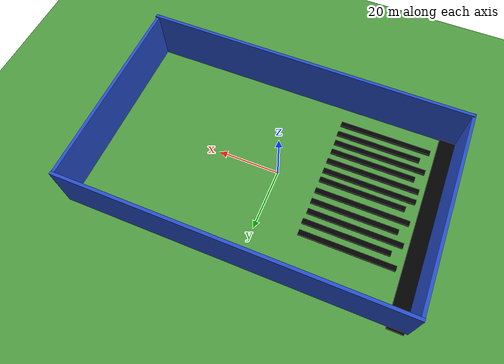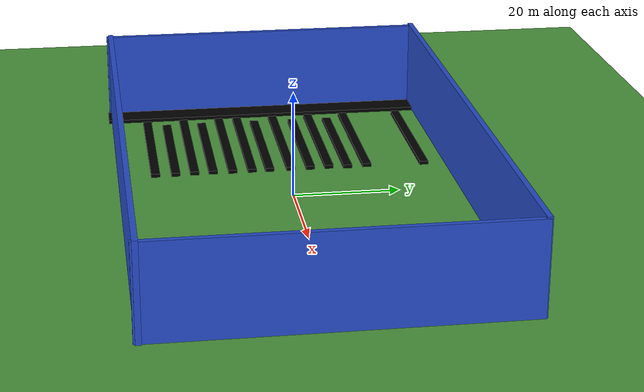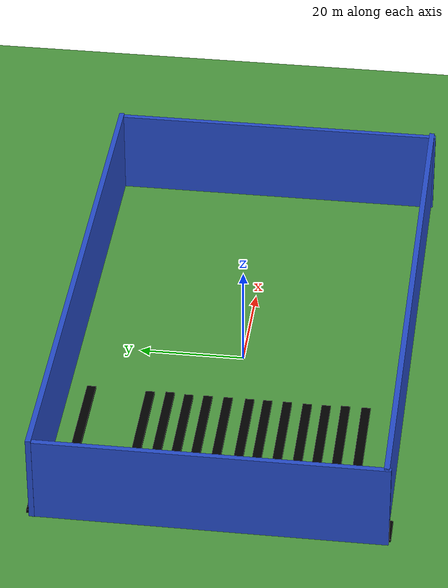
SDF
<sdf version="1.6">
 <world name="default">
  <model name="ground_plane">
   <static>1</static>
   <link name="link">
    <collision name="collision">
     <geometry><plane><normal>0 0 1</normal><size>120 120</size></plane></geometry>
     <surface><friction><ode><mu>100</mu><mu2>50</mu2></ode></friction></surface>
    </collision>
    <visual name="visual">
     <cast_shadows>0</cast_shadows>
     <geometry><plane><normal>0 0 1</normal><size>120 120</size></plane></geometry>
     <material>
      <script><uri>file://media/materials/scripts/gazebo.material</uri><name>Gazebo/Grass</name></script>
     </material>
    </visual>
   </link>
  </model>
  <model name="WALLS">
   <link name="link_0">
    <pose>-4.49328 -45.6418 8.05225 0 -0 0</pose>
    <inertial>
     <mass>1098.77</mass>
     <inertia><ixx>408732</ixx><ixy>0</ixy><ixz>0</ixz><iyy>26571.1</iyy><iyz>0</iyz><izz>382344</izz></inertia>
    </inertial>
    <visual name="visual">
     <geometry><box><size>1 64.6118 17.0056</size></box></geometry>
     <material>
      <script><uri>file://media/materials/scripts/gazebo.material</uri><name>Gazebo/BlueLaser</name></script>
     </material>
    </visual>
    <collision name="collision">
     <geometry><box><size>1 64.6118 17.0056</size></box></geometry>
     <surface>
      <friction>
       <ode><mu>1</mu><mu2>1</mu2><fdir1>0 0 0</fdir1><slip1>0</slip1><slip2>0</slip2></ode>
       <torsional>
        <coefficient>1</coefficient>
        <patch_radius>0</patch_radius>
        <surface_radius>0</surface_radius>
        <use_patch_radius>1</use_patch_radius>
        <ode><slip>0</slip></ode>
       </torsional>
      </friction>
      <bounce><restitution_coefficient>0</restitution_coefficient><threshold>1e+06</threshold></bounce>
      <contact>
       <collide_without_contact>0</collide_without_contact>
       <collide_without_contact_bitmask>1</collide_without_contact_bitmask>
       <collide_bitmask>1</collide_bitmask>
       <ode>
        <soft_cfm>0</soft_cfm>
        <soft_erp>0.2</soft_erp>
        <kp>1e+13</kp>
        <kd>1</kd>
        <max_vel>0.01</max_vel>
        <min_depth>0</min_depth>
       </ode>
       <bullet>
        <split_impulse>1</split_impulse>
        <split_impulse_penetration_threshold>-0.01</split_impulse_penetration_threshold>
        <soft_cfm>0</soft_cfm>
        <soft_erp>0.2</soft_erp>
        <kp>1e+13</kp>
        <kd>1</kd>
       </bullet>
      </contact>
     </surface>
    </collision>
   </link>
   <link name="link_0_clone">
    <pose>101.382 -45.6581 8.05225 0 -0 0</pose>
    <inertial>
     <mass>1098.77</mass>
     <inertia><ixx>408732</ixx><ixy>0</ixy><ixz>0</ixz><iyy>26571.1</iyy><iyz>0</iyz><izz>382344</izz></inertia>
    </inertial>
    <visual name="visual">
     <geometry><box><size>1 64.6118 17.0056</size></box></geometry>
     <material>
      <script><uri>file://media/materials/scripts/gazebo.material</uri><name>Gazebo/BlueLaser</name></script>
     </material>
    </visual>
    <collision name="collision">
     <geometry><box><size>1 64.6118 17.0056</size></box></geometry>
     <surface>
      <friction>
       <ode><mu>1</mu><mu2>1</mu2><fdir1>0 0 0</fdir1><slip1>0</slip1><slip2>0</slip2></ode>
       <torsional>
        <coefficient>1</coefficient>
        <patch_radius>0</patch_radius>
        <surface_radius>0</surface_radius>
        <use_patch_radius>1</use_patch_radius>
        <ode><slip>0</slip></ode>
       </torsional>
      </friction>
      <bounce><restitution_coefficient>0</restitution_coefficient><threshold>1e+06</threshold></bounce>
      <contact>
       <collide_without_contact>0</collide_without_contact>
       <collide_without_contact_bitmask>1</collide_without_contact_bitmask>
       <collide_bitmask>1</collide_bitmask>
       <ode>
        <soft_cfm>0</soft_cfm>
        <soft_erp>0.2</soft_erp>
        <kp>1e+13</kp>
        <kd>1</kd>
        <max_vel>0.01</max_vel>
        <min_depth>0</min_depth>
       </ode>
       <bullet>
        <split_impulse>1</split_impulse>
        <split_impulse_penetration_threshold>-0.01</split_impulse_penetration_threshold>
        <soft_cfm>0</soft_cfm>
        <soft_erp>0.2</soft_erp>
        <kp>1e+13</kp>
        <kd>1</kd>
       </bullet>
      </contact>
     </surface>
    </collision>
   </link>
   <link name="link_clone">
    <pose>48.7455 -77.1551 8.20614 0 -0 0</pose>
    <inertial>
     <mass>1851.31</mass>
     <inertia>
      <ixx>46490.6</ixx>
      <ixy>0</ixy>
      <ixz>0</ixz>
      <iyy>1.80683e+06</iyy>
      <iyz>0</iyz>
      <izz>1.76065e+06</izz>
     </inertia>
    </inertial>
    <visual name="visual">
     <geometry><box><size>106.824 1 17.3306</size></box></geometry>
     <material>
      <script><uri>file://media/materials/scripts/gazebo.material</uri><name>Gazebo/BlueLaser</name></script>
     </material>
    </visual>
    <collision name="collision">
     <geometry><box><size>106.824 1 17.3306</size></box></geometry>
     <surface>
      <friction>
       <ode><mu>1</mu><mu2>1</mu2><fdir1>0 0 0</fdir1><slip1>0</slip1><slip2>0</slip2></ode>
       <torsional>
        <coefficient>1</coefficient>
        <patch_radius>0</patch_radius>
        <surface_radius>0</surface_radius>
        <use_patch_radius>1</use_patch_radius>
        <ode><slip>0</slip></ode>
       </torsional>
      </friction>
      <bounce><restitution_coefficient>0</restitution_coefficient><threshold>1e+06</threshold></bounce>
      <contact>
       <collide_without_contact>0</collide_without_contact>
       <collide_without_contact_bitmask>1</collide_without_contact_bitmask>
       <collide_bitmask>1</collide_bitmask>
       <ode>
        <soft_cfm>0</soft_cfm>
        <soft_erp>0.2</soft_erp>
        <kp>1e+13</kp>
        <kd>1</kd>
        <max_vel>0.01</max_vel>
        <min_depth>0</min_depth>
       </ode>
       <bullet>
        <split_impulse>1</split_impulse>
        <split_impulse_penetration_threshold>-0.01</split_impulse_penetration_threshold>
        <soft_cfm>0</soft_cfm>
        <soft_erp>0.2</soft_erp>
        <kp>1e+13</kp>
        <kd>1</kd>
       </bullet>
      </contact>
     </surface>
    </collision>
   </link>
   <link name="link_clone_clone">
    <pose>48.3822 -13.6581 8.20614 0 -0 0</pose>
    <inertial>
     <mass>1851.31</mass>
     <inertia>
      <ixx>46490.6</ixx>
      <ixy>0</ixy>
      <ixz>0</ixz>
      <iyy>1.80683e+06</iyy>
      <iyz>0</iyz>
      <izz>1.76065e+06</izz>
     </inertia>
    </inertial>
    <visual name="visual">
     <geometry><box><size>106.824 1 17.3306</size></box></geometry>
     <material>
      <script><uri>file://media/materials/scripts/gazebo.material</uri><name>Gazebo/BlueLaser</name></script>
     </material>
    </visual>
    <collision name="collision">
     <geometry><box><size>106.824 1 17.3306</size></box></geometry>
     <surface>
      <friction>
       <ode><mu>1</mu><mu2>1</mu2><fdir1>0 0 0</fdir1><slip1>0</slip1><slip2>0</slip2></ode>
       <torsional>
        <coefficient>1</coefficient>
        <patch_radius>0</patch_radius>
        <surface_radius>0</surface_radius>
        <use_patch_radius>1</use_patch_radius>
        <ode><slip>0</slip></ode>
       </torsional>
      </friction>
      <bounce><restitution_coefficient>0</restitution_coefficient><threshold>1e+06</threshold></bounce>
      <contact>
       <collide_without_contact>0</collide_without_contact>
       <collide_without_contact_bitmask>1</collide_without_contact_bitmask>
       <collide_bitmask>1</collide_bitmask>
       <ode>
        <soft_cfm>0</soft_cfm>
        <soft_erp>0.2</soft_erp>
        <kp>1e+13</kp>
        <kd>1</kd>
        <max_vel>0.01</max_vel>
        <min_depth>0</min_depth>
       </ode>
       <bullet>
        <split_impulse>1</split_impulse>
        <split_impulse_penetration_threshold>-0.01</split_impulse_penetration_threshold>
        <soft_cfm>0</soft_cfm>
        <soft_erp>0.2</soft_erp>
        <kp>1e+13</kp>
        <kd>1</kd>
       </bullet>
      </contact>
     </surface>
    </collision>
   </link>
   <static>1</static>
   <pose>-45.7442 45.6641 0.450532 0 -0 0.000945</pose>
  </model>
  <model name="crop_01_8_clone_0_clone_0_clone_1_clone_clone_clone_clone_0_clone_27">
   <link name="crop_01_0::link_0">
    <inertial>
     <mass>10.9148</mass>
     <inertia><ixx>13.7036</ixx><ixy>0</ixy><ixz>0</ixz><iyy>702.087</iyy><iyz>0</iyz><izz>715.772</izz></inertia>
    </inertial>
    <visual name="visual">
     <geometry><box><size>30 1.68705 1</size></box></geometry>
     <material>
      <ambient>0 1 0 1</ambient>
      <diffuse>0 0 0 1</diffuse>
      <specular>0.1 0.1 0.1 1</specular>
      <emissive>0 0 0 0</emissive>
     </material>
    </visual>
    <collision name="collision">
     <geometry><box><size>30 1.68705 1</size></box></geometry>
     <surface>
      <friction>
       <ode><mu>1</mu><mu2>1</mu2><fdir1>0 0 0</fdir1><slip1>0</slip1><slip2>0</slip2></ode>
       <torsional>
        <coefficient>1</coefficient>
        <patch_radius>0</patch_radius>
        <surface_radius>0</surface_radius>
        <use_patch_radius>1</use_patch_radius>
        <ode><slip>0</slip></ode>
       </torsional>
      </friction>
      <bounce><restitution_coefficient>0</restitution_coefficient><threshold>1e+06</threshold></bounce>
      <contact>
       <collide_without_contact>0</collide_without_contact>
       <collide_without_contact_bitmask>1</collide_without_contact_bitmask>
       <collide_bitmask>1</collide_bitmask>
       <ode>
        <soft_cfm>0</soft_cfm>
        <soft_erp>0.2</soft_erp>
        <kp>1e+13</kp>
        <kd>1</kd>
        <max_vel>0.01</max_vel>
        <min_depth>0</min_depth>
       </ode>
       <bullet>
        <split_impulse>1</split_impulse>
        <split_impulse_penetration_threshold>-0.01</split_impulse_penetration_threshold>
        <soft_cfm>0</soft_cfm>
        <soft_erp>0.2</soft_erp>
        <kp>1e+13</kp>
        <kd>1</kd>
       </bullet>
      </contact>
     </surface>
    </collision>
   </link>
   <static>1</static>
   <pose>-27.8528 -24.7988 0.050638 0 -0 0</pose>
  </model>
  <model name="crop_01_8_clone_0_clone_0_clone_1_clone_clone_clone_clone_0_clone_30">
   <link name="crop_01_0::link_0">
    <inertial>
     <mass>10.9148</mass>
     <inertia><ixx>13.7036</ixx><ixy>0</ixy><ixz>0</ixz><iyy>702.087</iyy><iyz>0</iyz><izz>715.772</izz></inertia>
    </inertial>
    <visual name="visual">
     <geometry><box><size>30 1.68705 1</size></box></geometry>
     <material>
      <ambient>0 1 0 1</ambient>
      <diffuse>0 0 0 1</diffuse>
      <specular>0.1 0.1 0.1 1</specular>
      <emissive>0 0 0 0</emissive>
     </material>
    </visual>
    <collision name="collision">
     <geometry><box><size>30 1.68705 1</size></box></geometry>
     <surface>
      <friction>
       <ode><mu>1</mu><mu2>1</mu2><fdir1>0 0 0</fdir1><slip1>0</slip1><slip2>0</slip2></ode>
       <torsional>
        <coefficient>1</coefficient>
        <patch_radius>0</patch_radius>
        <surface_radius>0</surface_radius>
        <use_patch_radius>1</use_patch_radius>
        <ode><slip>0</slip></ode>
       </torsional>
      </friction>
      <bounce><restitution_coefficient>0</restitution_coefficient><threshold>1e+06</threshold></bounce>
      <contact>
       <collide_without_contact>0</collide_without_contact>
       <collide_without_contact_bitmask>1</collide_without_contact_bitmask>
       <collide_bitmask>1</collide_bitmask>
       <ode>
        <soft_cfm>0</soft_cfm>
        <soft_erp>0.2</soft_erp>
        <kp>1e+13</kp>
        <kd>1</kd>
        <max_vel>0.01</max_vel>
        <min_depth>0</min_depth>
       </ode>
       <bullet>
        <split_impulse>1</split_impulse>
        <split_impulse_penetration_threshold>-0.01</split_impulse_penetration_threshold>
        <soft_cfm>0</soft_cfm>
        <soft_erp>0.2</soft_erp>
        <kp>1e+13</kp>
        <kd>1</kd>
       </bullet>
      </contact>
     </surface>
    </collision>
   </link>
   <static>1</static>
   <pose>-28.0604 -17.3004 0.050638 0 -0 0</pose>
  </model>
  <model name="crop_01_8_clone_0_clone_0_clone_1_clone_clone_clone_clone_0_clone_33">
   <link name="crop_01_0::link_0">
    <inertial>
     <mass>10.9148</mass>
     <inertia><ixx>13.7036</ixx><ixy>0</ixy><ixz>0</ixz><iyy>702.087</iyy><iyz>0</iyz><izz>715.772</izz></inertia>
    </inertial>
    <visual name="visual">
     <geometry><box><size>30 1.68705 1</size></box></geometry>
     <material>
      <ambient>0 1 0 1</ambient>
      <diffuse>0 0 0 1</diffuse>
      <specular>0.1 0.1 0.1 1</specular>
      <emissive>0 0 0 0</emissive>
     </material>
    </visual>
    <collision name="collision">
     <geometry><box><size>30 1.68705 1</size></box></geometry>
     <surface>
      <friction>
       <ode><mu>1</mu><mu2>1</mu2><fdir1>0 0 0</fdir1><slip1>0</slip1><slip2>0</slip2></ode>
       <torsional>
        <coefficient>1</coefficient>
        <patch_radius>0</patch_radius>
        <surface_radius>0</surface_radius>
        <use_patch_radius>1</use_patch_radius>
        <ode><slip>0</slip></ode>
       </torsional>
      </friction>
      <bounce><restitution_coefficient>0</restitution_coefficient><threshold>1e+06</threshold></bounce>
      <contact>
       <collide_without_contact>0</collide_without_contact>
       <collide_without_contact_bitmask>1</collide_without_contact_bitmask>
       <collide_bitmask>1</collide_bitmask>
       <ode>
        <soft_cfm>0</soft_cfm>
        <soft_erp>0.2</soft_erp>
        <kp>1e+13</kp>
        <kd>1</kd>
        <max_vel>0.01</max_vel>
        <min_depth>0</min_depth>
       </ode>
       <bullet>
        <split_impulse>1</split_impulse>
        <split_impulse_penetration_threshold>-0.01</split_impulse_penetration_threshold>
        <soft_cfm>0</soft_cfm>
        <soft_erp>0.2</soft_erp>
        <kp>1e+13</kp>
        <kd>1</kd>
       </bullet>
      </contact>
     </surface>
    </collision>
   </link>
   <static>1</static>
   <pose>-27.9791 -6.20116 0.050638 0 -0 0</pose>
  </model>
  <model name="crop_01_8_clone_0_clone_0_clone_1_clone_clone_clone_clone_0_clone_35">
   <link name="crop_01_0::link_0">
    <inertial>
     <mass>10.9148</mass>
     <inertia><ixx>13.7036</ixx><ixy>0</ixy><ixz>0</ixz><iyy>702.087</iyy><iyz>0</iyz><izz>715.772</izz></inertia>
    </inertial>
    <visual name="visual">
     <geometry><box><size>30 1.68705 1</size></box></geometry>
     <material>
      <ambient>0 1 0 1</ambient>
      <diffuse>0 0 0 1</diffuse>
      <specular>0.1 0.1 0.1 1</specular>
      <emissive>0 0 0 0</emissive>
     </material>
    </visual>
    <collision name="collision">
     <geometry><box><size>30 1.68705 1</size></box></geometry>
     <surface>
      <friction>
       <ode><mu>1</mu><mu2>1</mu2><fdir1>0 0 0</fdir1><slip1>0</slip1><slip2>0</slip2></ode>
       <torsional>
        <coefficient>1</coefficient>
        <patch_radius>0</patch_radius>
        <surface_radius>0</surface_radius>
        <use_patch_radius>1</use_patch_radius>
        <ode><slip>0</slip></ode>
       </torsional>
      </friction>
      <bounce><restitution_coefficient>0</restitution_coefficient><threshold>1e+06</threshold></bounce>
      <contact>
       <collide_without_contact>0</collide_without_contact>
       <collide_without_contact_bitmask>1</collide_without_contact_bitmask>
       <collide_bitmask>1</collide_bitmask>
       <ode>
        <soft_cfm>0</soft_cfm>
        <soft_erp>0.2</soft_erp>
        <kp>1e+13</kp>
        <kd>1</kd>
        <max_vel>0.01</max_vel>
        <min_depth>0</min_depth>
       </ode>
       <bullet>
        <split_impulse>1</split_impulse>
        <split_impulse_penetration_threshold>-0.01</split_impulse_penetration_threshold>
        <soft_cfm>0</soft_cfm>
        <soft_erp>0.2</soft_erp>
        <kp>1e+13</kp>
        <kd>1</kd>
       </bullet>
      </contact>
     </surface>
    </collision>
   </link>
   <static>1</static>
   <pose>-27.9705 1.30195 0.050638 0 -0 0</pose>
  </model>
  <model name="crop_01_8_clone_0_clone_0_clone_1_clone_clone_clone_clone_0_clone_38">
   <link name="crop_01_0::link_0">
    <inertial>
     <mass>10.9148</mass>
     <inertia><ixx>13.7036</ixx><ixy>0</ixy><ixz>0</ixz><iyy>702.087</iyy><iyz>0</iyz><izz>715.772</izz></inertia>
    </inertial>
    <visual name="visual">
     <geometry><box><size>30 1.68705 1</size></box></geometry>
     <material>
      <ambient>0 1 0 1</ambient>
      <diffuse>0 0 0 1</diffuse>
      <specular>0.1 0.1 0.1 1</specular>
      <emissive>0 0 0 0</emissive>
     </material>
    </visual>
    <collision name="collision">
     <geometry><box><size>30 1.68705 1</size></box></geometry>
     <surface>
      <friction>
       <ode><mu>1</mu><mu2>1</mu2><fdir1>0 0 0</fdir1><slip1>0</slip1><slip2>0</slip2></ode>
       <torsional>
        <coefficient>1</coefficient>
        <patch_radius>0</patch_radius>
        <surface_radius>0</surface_radius>
        <use_patch_radius>1</use_patch_radius>
        <ode><slip>0</slip></ode>
       </torsional>
      </friction>
      <bounce><restitution_coefficient>0</restitution_coefficient><threshold>1e+06</threshold></bounce>
      <contact>
       <collide_without_contact>0</collide_without_contact>
       <collide_without_contact_bitmask>1</collide_without_contact_bitmask>
       <collide_bitmask>1</collide_bitmask>
       <ode>
        <soft_cfm>0</soft_cfm>
        <soft_erp>0.2</soft_erp>
        <kp>1e+13</kp>
        <kd>1</kd>
        <max_vel>0.01</max_vel>
        <min_depth>0</min_depth>
       </ode>
       <bullet>
        <split_impulse>1</split_impulse>
        <split_impulse_penetration_threshold>-0.01</split_impulse_penetration_threshold>
        <soft_cfm>0</soft_cfm>
        <soft_erp>0.2</soft_erp>
        <kp>1e+13</kp>
        <kd>1</kd>
       </bullet>
      </contact>
     </surface>
    </collision>
   </link>
   <static>1</static>
   <pose>-28.0581 8.76583 0.050638 0 -0 0</pose>
  </model>
  <model name="crop_01_8_clone_0_clone_0_clone_1_clone_clone_clone_clone_0_clone_40">
   <link name="crop_01_0::link_0">
    <inertial>
     <mass>10.9148</mass>
     <inertia><ixx>13.7036</ixx><ixy>0</ixy><ixz>0</ixz><iyy>702.087</iyy><iyz>0</iyz><izz>715.772</izz></inertia>
    </inertial>
    <visual name="visual">
     <geometry><box><size>30 1.68705 1</size></box></geometry>
     <material>
      <ambient>0 1 0 1</ambient>
      <diffuse>0 0 0 1</diffuse>
      <specular>0.1 0.1 0.1 1</specular>
      <emissive>0 0 0 0</emissive>
     </material>
    </visual>
    <collision name="collision">
     <geometry><box><size>30 1.68705 1</size></box></geometry>
     <surface>
      <friction>
       <ode><mu>1</mu><mu2>1</mu2><fdir1>0 0 0</fdir1><slip1>0</slip1><slip2>0</slip2></ode>
       <torsional>
        <coefficient>1</coefficient>
        <patch_radius>0</patch_radius>
        <surface_radius>0</surface_radius>
        <use_patch_radius>1</use_patch_radius>
        <ode><slip>0</slip></ode>
       </torsional>
      </friction>
      <bounce><restitution_coefficient>0</restitution_coefficient><threshold>1e+06</threshold></bounce>
      <contact>
       <collide_without_contact>0</collide_without_contact>
       <collide_without_contact_bitmask>1</collide_without_contact_bitmask>
       <collide_bitmask>1</collide_bitmask>
       <ode>
        <soft_cfm>0</soft_cfm>
        <soft_erp>0.2</soft_erp>
        <kp>1e+13</kp>
        <kd>1</kd>
        <max_vel>0.01</max_vel>
        <min_depth>0</min_depth>
       </ode>
       <bullet>
        <split_impulse>1</split_impulse>
        <split_impulse_penetration_threshold>-0.01</split_impulse_penetration_threshold>
        <soft_cfm>0</soft_cfm>
        <soft_erp>0.2</soft_erp>
        <kp>1e+13</kp>
        <kd>1</kd>
       </bullet>
      </contact>
     </surface>
    </collision>
   </link>
   <static>1</static>
   <pose>-27.9486 16.1664 0.050638 0 -0 0</pose>
  </model>
  <model name="crop_01_8_clone_0_clone_0_clone_1_clone_clone_clone_clone_0_clone_44">
   <link name="crop_01_0::link_0">
    <inertial>
     <mass>10.9148</mass>
     <inertia><ixx>13.7036</ixx><ixy>0</ixy><ixz>0</ixz><iyy>702.087</iyy><iyz>0</iyz><izz>715.772</izz></inertia>
    </inertial>
    <visual name="visual">
     <geometry><box><size>30 1.68705 1</size></box></geometry>
     <material>
      <ambient>0 1 0 1</ambient>
      <diffuse>0 0 0 1</diffuse>
      <specular>0.1 0.1 0.1 1</specular>
      <emissive>0 0 0 0</emissive>
     </material>
    </visual>
    <collision name="collision">
     <geometry><box><size>30 1.68705 1</size></box></geometry>
     <surface>
      <friction>
       <ode><mu>1</mu><mu2>1</mu2><fdir1>0 0 0</fdir1><slip1>0</slip1><slip2>0</slip2></ode>
       <torsional>
        <coefficient>1</coefficient>
        <patch_radius>0</patch_radius>
        <surface_radius>0</surface_radius>
        <use_patch_radius>1</use_patch_radius>
        <ode><slip>0</slip></ode>
       </torsional>
      </friction>
      <bounce><restitution_coefficient>0</restitution_coefficient><threshold>1e+06</threshold></bounce>
      <contact>
       <collide_without_contact>0</collide_without_contact>
       <collide_without_contact_bitmask>1</collide_without_contact_bitmask>
       <collide_bitmask>1</collide_bitmask>
       <ode>
        <soft_cfm>0</soft_cfm>
        <soft_erp>0.2</soft_erp>
        <kp>1e+13</kp>
        <kd>1</kd>
        <max_vel>0.01</max_vel>
        <min_depth>0</min_depth>
       </ode>
       <bullet>
        <split_impulse>1</split_impulse>
        <split_impulse_penetration_threshold>-0.01</split_impulse_penetration_threshold>
        <soft_cfm>0</soft_cfm>
        <soft_erp>0.2</soft_erp>
        <kp>1e+13</kp>
        <kd>1</kd>
       </bullet>
      </contact>
     </surface>
    </collision>
   </link>
   <static>1</static>
   <pose>-27.7224 27.4294 0.050638 0 -0 0</pose>
  </model>
  <model name="crop_01_8_clone_0_clone_0_clone_1_clone_clone_clone_clone_0_clone_46_clone_1_clone">
   <link name="crop_01_0::link_0">
    <inertial>
     <mass>10.9148</mass>
     <inertia><ixx>13.7036</ixx><ixy>0</ixy><ixz>0</ixz><iyy>702.087</iyy><iyz>0</iyz><izz>715.772</izz></inertia>
    </inertial>
    <visual name="visual">
     <geometry><box><size>65.8071 5.06569 1</size></box></geometry>
     <material>
      <ambient>0 1 0 1</ambient>
      <diffuse>0 0 0 1</diffuse>
      <specular>0.1 0.1 0.1 1</specular>
      <emissive>0 0 0 0</emissive>
     </material>
    </visual>
    <collision name="collision">
     <geometry><box><size>65.8071 5.06569 1</size></box></geometry>
     <surface>
      <friction>
       <ode><mu>1</mu><mu2>1</mu2><fdir1>0 0 0</fdir1><slip1>0</slip1><slip2>0</slip2></ode>
       <torsional>
        <coefficient>1</coefficient>
        <patch_radius>0</patch_radius>
        <surface_radius>0</surface_radius>
        <use_patch_radius>1</use_patch_radius>
        <ode><slip>0</slip></ode>
       </torsional>
      </friction>
      <bounce><restitution_coefficient>0</restitution_coefficient><threshold>1e+06</threshold></bounce>
      <contact>
       <collide_without_contact>0</collide_without_contact>
       <collide_without_contact_bitmask>1</collide_without_contact_bitmask>
       <collide_bitmask>1</collide_bitmask>
       <ode>
        <soft_cfm>0</soft_cfm>
        <soft_erp>0.2</soft_erp>
        <kp>1e+13</kp>
        <kd>1</kd>
        <max_vel>0.01</max_vel>
        <min_depth>0</min_depth>
       </ode>
       <bullet>
        <split_impulse>1</split_impulse>
        <split_impulse_penetration_threshold>-0.01</split_impulse_penetration_threshold>
        <soft_cfm>0</soft_cfm>
        <soft_erp>0.2</soft_erp>
        <kp>1e+13</kp>
        <kd>1</kd>
       </bullet>
      </contact>
     </surface>
    </collision>
   </link>
   <static>1</static>
   <pose>-47.1465 0.282169 0.050638 0 -0 1.57201</pose>
  </model>
  <model name="crop_01_8_clone_0_clone_0_clone_1_clone_clone_clone_clone_0_clone_19_clone_0">
   <link name="crop_01_0::link_0">
    <inertial>
     <mass>10.9148</mass>
     <inertia><ixx>13.7036</ixx><ixy>0</ixy><ixz>0</ixz><iyy>702.087</iyy><iyz>0</iyz><izz>715.772</izz></inertia>
    </inertial>
    <visual name="visual">
     <geometry><box><size>27.5929 1.68705 1</size></box></geometry>
     <material>
      <ambient>0 1 0 1</ambient>
      <diffuse>0 0 0 1</diffuse>
      <specular>0.1 0.1 0.1 1</specular>
      <emissive>0 0 0 0</emissive>
     </material>
    </visual>
    <collision name="collision">
     <geometry><box><size>27.5929 1.68705 1</size></box></geometry>
     <surface>
      <friction>
       <ode><mu>1</mu><mu2>1</mu2><fdir1>0 0 0</fdir1><slip1>0</slip1><slip2>0</slip2></ode>
       <torsional>
        <coefficient>1</coefficient>
        <patch_radius>0</patch_radius>
        <surface_radius>0</surface_radius>
        <use_patch_radius>1</use_patch_radius>
        <ode><slip>0</slip></ode>
       </torsional>
      </friction>
      <bounce><restitution_coefficient>0</restitution_coefficient><threshold>1e+06</threshold></bounce>
      <contact>
       <collide_without_contact>0</collide_without_contact>
       <collide_without_contact_bitmask>1</collide_without_contact_bitmask>
       <collide_bitmask>1</collide_bitmask>
       <ode>
        <soft_cfm>0</soft_cfm>
        <soft_erp>0.2</soft_erp>
        <kp>1e+13</kp>
        <kd>1</kd>
        <max_vel>0.01</max_vel>
        <min_depth>0</min_depth>
       </ode>
       <bullet>
        <split_impulse>1</split_impulse>
        <split_impulse_penetration_threshold>-0.01</split_impulse_penetration_threshold>
        <soft_cfm>0</soft_cfm>
        <soft_erp>0.2</soft_erp>
        <kp>1e+13</kp>
        <kd>1</kd>
       </bullet>
      </contact>
     </surface>
    </collision>
   </link>
   <static>1</static>
   <pose>-26.5387 12.373 0.050638 0 -0 0</pose>
  </model>
  <model name="crop_01_8_clone_0_clone_0_clone_1_clone_clone_clone_clone_0_clone_19_clone_2">
   <link name="crop_01_0::link_0">
    <inertial>
     <mass>10.9148</mass>
     <inertia><ixx>13.7036</ixx><ixy>0</ixy><ixz>0</ixz><iyy>702.087</iyy><iyz>0</iyz><izz>715.772</izz></inertia>
    </inertial>
    <visual name="visual">
     <geometry><box><size>27.5929 1.68705 1</size></box></geometry>
     <material>
      <ambient>0 1 0 1</ambient>
      <diffuse>0 0 0 1</diffuse>
      <specular>0.1 0.1 0.1 1</specular>
      <emissive>0 0 0 0</emissive>
     </material>
    </visual>
    <collision name="collision">
     <geometry><box><size>27.5929 1.68705 1</size></box></geometry>
     <surface>
      <friction>
       <ode><mu>1</mu><mu2>1</mu2><fdir1>0 0 0</fdir1><slip1>0</slip1><slip2>0</slip2></ode>
       <torsional>
        <coefficient>1</coefficient>
        <patch_radius>0</patch_radius>
        <surface_radius>0</surface_radius>
        <use_patch_radius>1</use_patch_radius>
        <ode><slip>0</slip></ode>
       </torsional>
      </friction>
      <bounce><restitution_coefficient>0</restitution_coefficient><threshold>1e+06</threshold></bounce>
      <contact>
       <collide_without_contact>0</collide_without_contact>
       <collide_without_contact_bitmask>1</collide_without_contact_bitmask>
       <collide_bitmask>1</collide_bitmask>
       <ode>
        <soft_cfm>0</soft_cfm>
        <soft_erp>0.2</soft_erp>
        <kp>1e+13</kp>
        <kd>1</kd>
        <max_vel>0.01</max_vel>
        <min_depth>0</min_depth>
       </ode>
       <bullet>
        <split_impulse>1</split_impulse>
        <split_impulse_penetration_threshold>-0.01</split_impulse_penetration_threshold>
        <soft_cfm>0</soft_cfm>
        <soft_erp>0.2</soft_erp>
        <kp>1e+13</kp>
        <kd>1</kd>
       </bullet>
      </contact>
     </surface>
    </collision>
   </link>
   <static>1</static>
   <pose>-26.7699 5.12827 0.050638 0 -0 0</pose>
  </model>
  <model name="crop_01_8_clone_0_clone_0_clone_1_clone_clone_clone_clone_0_clone_19_clone_3">
   <link name="crop_01_0::link_0">
    <inertial>
     <mass>10.9148</mass>
     <inertia><ixx>13.7036</ixx><ixy>0</ixy><ixz>0</ixz><iyy>702.087</iyy><iyz>0</iyz><izz>715.772</izz></inertia>
    </inertial>
    <visual name="visual">
     <geometry><box><size>27.5929 1.68705 1</size></box></geometry>
     <material>
      <ambient>0 1 0 1</ambient>
      <diffuse>0 0 0 1</diffuse>
      <specular>0.1 0.1 0.1 1</specular>
      <emissive>0 0 0 0</emissive>
     </material>
    </visual>
    <collision name="collision">
     <geometry><box><size>27.5929 1.68705 1</size></box></geometry>
     <surface>
      <friction>
       <ode><mu>1</mu><mu2>1</mu2><fdir1>0 0 0</fdir1><slip1>0</slip1><slip2>0</slip2></ode>
       <torsional>
        <coefficient>1</coefficient>
        <patch_radius>0</patch_radius>
        <surface_radius>0</surface_radius>
        <use_patch_radius>1</use_patch_radius>
        <ode><slip>0</slip></ode>
       </torsional>
      </friction>
      <bounce><restitution_coefficient>0</restitution_coefficient><threshold>1e+06</threshold></bounce>
      <contact>
       <collide_without_contact>0</collide_without_contact>
       <collide_without_contact_bitmask>1</collide_without_contact_bitmask>
       <collide_bitmask>1</collide_bitmask>
       <ode>
        <soft_cfm>0</soft_cfm>
        <soft_erp>0.2</soft_erp>
        <kp>1e+13</kp>
        <kd>1</kd>
        <max_vel>0.01</max_vel>
        <min_depth>0</min_depth>
       </ode>
       <bullet>
        <split_impulse>1</split_impulse>
        <split_impulse_penetration_threshold>-0.01</split_impulse_penetration_threshold>
        <soft_cfm>0</soft_cfm>
        <soft_erp>0.2</soft_erp>
        <kp>1e+13</kp>
        <kd>1</kd>
       </bullet>
      </contact>
     </surface>
    </collision>
   </link>
   <static>1</static>
   <pose>-26.7639 -2.80733 0.050638 0 -0 0</pose>
  </model>
  <model name="crop_01_8_clone_0_clone_0_clone_1_clone_clone_clone_clone_0_clone_19_clone_5">
   <link name="crop_01_0::link_0">
    <inertial>
     <mass>10.9148</mass>
     <inertia><ixx>13.7036</ixx><ixy>0</ixy><ixz>0</ixz><iyy>702.087</iyy><iyz>0</iyz><izz>715.772</izz></inertia>
    </inertial>
    <visual name="visual">
     <geometry><box><size>27.5929 1.68705 1</size></box></geometry>
     <material>
      <ambient>0 1 0 1</ambient>
      <diffuse>0 0 0 1</diffuse>
      <specular>0.1 0.1 0.1 1</specular>
      <emissive>0 0 0 0</emissive>
     </material>
    </visual>
    <collision name="collision">
     <geometry><box><size>27.5929 1.68705 1</size></box></geometry>
     <surface>
      <friction>
       <ode><mu>1</mu><mu2>1</mu2><fdir1>0 0 0</fdir1><slip1>0</slip1><slip2>0</slip2></ode>
       <torsional>
        <coefficient>1</coefficient>
        <patch_radius>0</patch_radius>
        <surface_radius>0</surface_radius>
        <use_patch_radius>1</use_patch_radius>
        <ode><slip>0</slip></ode>
       </torsional>
      </friction>
      <bounce><restitution_coefficient>0</restitution_coefficient><threshold>1e+06</threshold></bounce>
      <contact>
       <collide_without_contact>0</collide_without_contact>
       <collide_without_contact_bitmask>1</collide_without_contact_bitmask>
       <collide_bitmask>1</collide_bitmask>
       <ode>
        <soft_cfm>0</soft_cfm>
        <soft_erp>0.2</soft_erp>
        <kp>1e+13</kp>
        <kd>1</kd>
        <max_vel>0.01</max_vel>
        <min_depth>0</min_depth>
       </ode>
       <bullet>
        <split_impulse>1</split_impulse>
        <split_impulse_penetration_threshold>-0.01</split_impulse_penetration_threshold>
        <soft_cfm>0</soft_cfm>
        <soft_erp>0.2</soft_erp>
        <kp>1e+13</kp>
        <kd>1</kd>
       </bullet>
      </contact>
     </surface>
    </collision>
   </link>
   <static>1</static>
   <pose>-26.8767 -13.7309 0.050638 0 -0 0</pose>
  </model>
  <model name="crop_01_8_clone_0_clone_0_clone_1_clone_clone_clone_clone_0_clone_19_clone_5_clone_0">
   <link name="crop_01_0::link_0">
    <inertial>
     <mass>10.9148</mass>
     <inertia><ixx>13.7036</ixx><ixy>0</ixy><ixz>0</ixz><iyy>702.087</iyy><iyz>0</iyz><izz>715.772</izz></inertia>
    </inertial>
    <visual name="visual">
     <geometry><box><size>27.5929 1.68705 1</size></box></geometry>
     <material>
      <ambient>0 1 0 1</ambient>
      <diffuse>0 0 0 1</diffuse>
      <specular>0.1 0.1 0.1 1</specular>
      <emissive>0 0 0 0</emissive>
     </material>
    </visual>
    <collision name="collision">
     <geometry><box><size>27.5929 1.68705 1</size></box></geometry>
     <surface>
      <friction>
       <ode><mu>1</mu><mu2>1</mu2><fdir1>0 0 0</fdir1><slip1>0</slip1><slip2>0</slip2></ode>
       <torsional>
        <coefficient>1</coefficient>
        <patch_radius>0</patch_radius>
        <surface_radius>0</surface_radius>
        <use_patch_radius>1</use_patch_radius>
        <ode><slip>0</slip></ode>
       </torsional>
      </friction>
      <bounce><restitution_coefficient>0</restitution_coefficient><threshold>1e+06</threshold></bounce>
      <contact>
       <collide_without_contact>0</collide_without_contact>
       <collide_without_contact_bitmask>1</collide_without_contact_bitmask>
       <collide_bitmask>1</collide_bitmask>
       <ode>
        <soft_cfm>0</soft_cfm>
        <soft_erp>0.2</soft_erp>
        <kp>1e+13</kp>
        <kd>1</kd>
        <max_vel>0.01</max_vel>
        <min_depth>0</min_depth>
       </ode>
       <bullet>
        <split_impulse>1</split_impulse>
        <split_impulse_penetration_threshold>-0.01</split_impulse_penetration_threshold>
        <soft_cfm>0</soft_cfm>
        <soft_erp>0.2</soft_erp>
        <kp>1e+13</kp>
        <kd>1</kd>
       </bullet>
      </contact>
     </surface>
    </collision>
   </link>
   <static>1</static>
   <pose>-26.6407 -20.9285 0.050638 0 -0 0</pose>
  </model>
  <model name="crop_01_8_clone_0_clone_0_clone_1_clone_clone_clone_clone_0_clone_33_clone">
   <link name="crop_01_0::link_0">
    <inertial>
     <mass>10.9148</mass>
     <inertia><ixx>13.7036</ixx><ixy>0</ixy><ixz>0</ixz><iyy>702.087</iyy><iyz>0</iyz><izz>715.772</izz></inertia>
    </inertial>
    <visual name="visual">
     <geometry><box><size>30 1.68705 1</size></box></geometry>
     <material>
      <ambient>0 1 0 1</ambient>
      <diffuse>0 0 0 1</diffuse>
      <specular>0.1 0.1 0.1 1</specular>
      <emissive>0 0 0 0</emissive>
     </material>
    </visual>
    <collision name="collision">
     <geometry><box><size>30 1.68705 1</size></box></geometry>
     <surface>
      <friction>
       <ode><mu>1</mu><mu2>1</mu2><fdir1>0 0 0</fdir1><slip1>0</slip1><slip2>0</slip2></ode>
       <torsional>
        <coefficient>1</coefficient>
        <patch_radius>0</patch_radius>
        <surface_radius>0</surface_radius>
        <use_patch_radius>1</use_patch_radius>
        <ode><slip>0</slip></ode>
       </torsional>
      </friction>
      <bounce><restitution_coefficient>0</restitution_coefficient><threshold>1e+06</threshold></bounce>
      <contact>
       <collide_without_contact>0</collide_without_contact>
       <collide_without_contact_bitmask>1</collide_without_contact_bitmask>
       <collide_bitmask>1</collide_bitmask>
       <ode>
        <soft_cfm>0</soft_cfm>
        <soft_erp>0.2</soft_erp>
        <kp>1e+13</kp>
        <kd>1</kd>
        <max_vel>0.01</max_vel>
        <min_depth>0</min_depth>
       </ode>
       <bullet>
        <split_impulse>1</split_impulse>
        <split_impulse_penetration_threshold>-0.01</split_impulse_penetration_threshold>
        <soft_cfm>0</soft_cfm>
        <soft_erp>0.2</soft_erp>
        <kp>1e+13</kp>
        <kd>1</kd>
       </bullet>
      </contact>
     </surface>
    </collision>
   </link>
   <static>1</static>
   <pose>-27.9629 -9.95491 0.050638 0 -0 0</pose>
  </model>
 </world>
</sdf>
